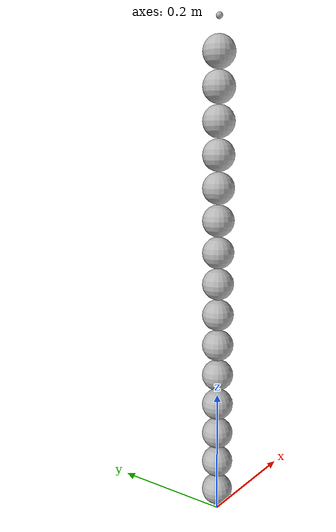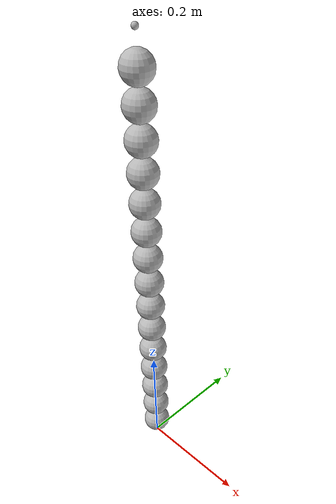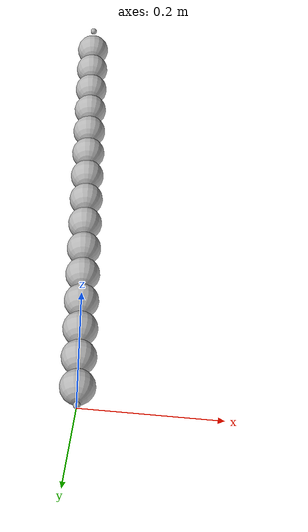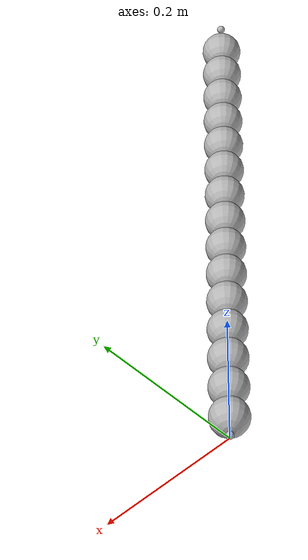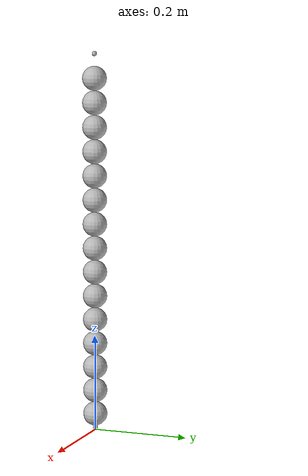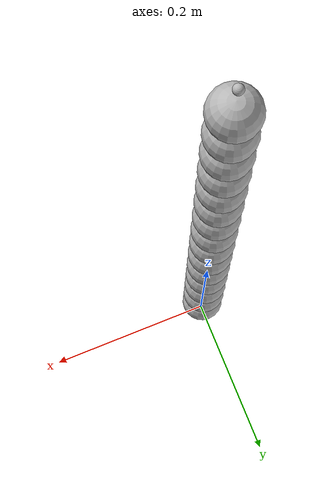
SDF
<?xml version='1.0'?>
<sdf version='1.5'>
  <model name='Rope'>
    <link name='ball0_link'>
      <pose>0 0 0.005 0 0 0</pose>
      <inertial>
        <mass>0.001</mass>
        <inertia>
          <ixx>0.0001</ixx>
          <ixy>0</ixy>
          <ixz>0</ixz>
          <iyy>0.0001</iyy>
          <iyz>0</iyz>
          <izz>0.0001</izz>
        </inertia>
      </inertial>
      <self_collide>0</self_collide>
      <enable_wind>0</enable_wind>
      <kinematic>0</kinematic>

      <visual name='ball0_visual'>
        <geometry>
          <sphere>
            <radius>0.005</radius>
          </sphere>
        </geometry>
        <material>
          <shader type='pixel'/>
        </material>
        <transparency>0</transparency>
        <cast_shadows>1</cast_shadows>
      </visual>
      <collision name='ball0_collision'>
        <laser_retro>0</laser_retro>
        <max_contacts>10</max_contacts>
        <geometry>
          <sphere>
            <radius>0.005</radius>
          </sphere>
        </geometry>
        <surface>
          <friction>
            <ode>
              <mu>0.01</mu>
              <mu2>0.01</mu2>
              <fdir1>0 0 0</fdir1>
              <slip1>0</slip1>
              <slip2>0</slip2>
            </ode>
            <torsional>
              <coefficient>1</coefficient>
              <patch_radius>0</patch_radius>
              <surface_radius>0</surface_radius>
              <use_patch_radius>1</use_patch_radius>
              <ode>
                <slip>0</slip>
              </ode>
            </torsional>
          </friction>
          <bounce>
            <restitution_coefficient>0.1</restitution_coefficient>
            <threshold>1e+06</threshold>
          </bounce>
          <contact>
            <collide_without_contact>0</collide_without_contact>
            <collide_without_contact_bitmask>1</collide_without_contact_bitmask>
            <collide_bitmask>1</collide_bitmask>
            <ode>
              <soft_cfm>0</soft_cfm>
              <soft_erp>0.2</soft_erp>
              <kp>1e+13</kp>
              <kd>1</kd>
              <max_vel>0.01</max_vel>
              <min_depth>0</min_depth>
            </ode>
            <bullet>
              <split_impulse>1</split_impulse>
              <split_impulse_penetration_threshold>-0.01</split_impulse_penetration_threshold>
              <soft_cfm>0</soft_cfm>
              <soft_erp>0.2</soft_erp>
              <kp>1e+13</kp>
              <kd>1</kd>
            </bullet>
          </contact>
        </surface>
      </collision>
    </link>

    <link name='ball1_link'>
      <pose>0 0 0.035 0 -0 0</pose>
      <inertial>
        <mass>0.001</mass>
        <inertia>
          <ixx>0.0001</ixx>
          <ixy>0</ixy>
          <ixz>0</ixz>
          <iyy>0.0001</iyy>
          <iyz>0</iyz>
          <izz>0.0001</izz>
        </inertia>
      </inertial>
      <self_collide>0</self_collide>
      <enable_wind>0</enable_wind>
      <kinematic>0</kinematic>
      <visual name='ball1_visual'>
        <geometry>
          <sphere>
            <radius>0.025</radius>
          </sphere>
        </geometry>
        <material>
          <shader type='pixel'/>
        </material>
        <pose frame=''>0 -0 0 0 -0 0</pose>
        <transparency>0</transparency>
        <cast_shadows>1</cast_shadows>
      </visual>
      <collision name='ball1_collision'>
        <laser_retro>0</laser_retro>
        <max_contacts>10</max_contacts>
        <pose frame=''>0 0 0 0 0 0</pose>
        <geometry>
          <sphere>
            <radius>0.025</radius>
          </sphere>
        </geometry>
        <surface>
          <friction>
            <ode>
              <mu>0.01</mu>
              <mu2>0.01</mu2>
              <fdir1>0 0 0</fdir1>
              <slip1>0</slip1>
              <slip2>0</slip2>
            </ode>
            <torsional>
              <coefficient>1</coefficient>
              <patch_radius>0</patch_radius>
              <surface_radius>0</surface_radius>
              <use_patch_radius>1</use_patch_radius>
              <ode>
                <slip>0</slip>
              </ode>
            </torsional>
          </friction>
          <bounce>
            <restitution_coefficient>0.1</restitution_coefficient>
            <threshold>1e+06</threshold>
          </bounce>
          <contact>
            <collide_without_contact>0</collide_without_contact>
            <collide_without_contact_bitmask>1</collide_without_contact_bitmask>
            <collide_bitmask>1</collide_bitmask>
            <ode>
              <soft_cfm>0</soft_cfm>
              <soft_erp>0.2</soft_erp>
              <kp>1e+13</kp>
              <kd>1</kd>
              <max_vel>0.01</max_vel>
              <min_depth>0</min_depth>
            </ode>
            <bullet>
              <split_impulse>1</split_impulse>
              <split_impulse_penetration_threshold>-0.01</split_impulse_penetration_threshold>
              <soft_cfm>0</soft_cfm>
              <soft_erp>0.2</soft_erp>
              <kp>1e+13</kp>
              <kd>1</kd>
            </bullet>
          </contact>
        </surface>
      </collision>
    </link>

    <link name='ball2_link'>
      <pose>0 0 0.085 0 -0 0</pose>
      <inertial>
        <mass>0.001</mass>
        <inertia>
          <ixx>0.0001</ixx>
          <ixy>0</ixy>
          <ixz>0</ixz>
          <iyy>0.0001</iyy>
          <iyz>0</iyz>
          <izz>0.0001</izz>
        </inertia>
      </inertial>
      <self_collide>0</self_collide>
      <enable_wind>0</enable_wind>
      <kinematic>0</kinematic>
      <visual name='ball2_visual'>
        <geometry>
          <sphere>
            <radius>0.025</radius>
          </sphere>
        </geometry>
        <material>
          <shader type='pixel'/>
        </material>
        <pose frame=''>0 -0 0 0 -0 0</pose>
        <transparency>0</transparency>
        <cast_shadows>1</cast_shadows>
      </visual>
      <collision name='ball2_collision'>
        <laser_retro>0</laser_retro>
        <max_contacts>10</max_contacts>
        <pose frame=''>0 0 0 0 0 0</pose>
        <geometry>
          <sphere>
            <radius>0.025</radius>
          </sphere>
        </geometry>
        <surface>
          <friction>
            <ode>
              <mu>0.01</mu>
              <mu2>0.01</mu2>
              <fdir1>0 0 0</fdir1>
              <slip1>0</slip1>
              <slip2>0</slip2>
            </ode>
            <torsional>
              <coefficient>1</coefficient>
              <patch_radius>0</patch_radius>
              <surface_radius>0</surface_radius>
              <use_patch_radius>1</use_patch_radius>
              <ode>
                <slip>0</slip>
              </ode>
            </torsional>
          </friction>
          <bounce>
            <restitution_coefficient>0.1</restitution_coefficient>
            <threshold>1e+06</threshold>
          </bounce>
          <contact>
            <collide_without_contact>0</collide_without_contact>
            <collide_without_contact_bitmask>1</collide_without_contact_bitmask>
            <collide_bitmask>1</collide_bitmask>
            <ode>
              <soft_cfm>0</soft_cfm>
              <soft_erp>0.2</soft_erp>
              <kp>1e+13</kp>
              <kd>1</kd>
              <max_vel>0.01</max_vel>
              <min_depth>0</min_depth>
            </ode>
            <bullet>
              <split_impulse>1</split_impulse>
              <split_impulse_penetration_threshold>-0.01</split_impulse_penetration_threshold>
              <soft_cfm>0</soft_cfm>
              <soft_erp>0.2</soft_erp>
              <kp>1e+13</kp>
              <kd>1</kd>
            </bullet>
          </contact>
        </surface>
      </collision>
    </link>

    <link name='ball3_link'>
      <pose>0 0 0.135 0 -0 0</pose>
      <inertial>
        <mass>0.001</mass>
        <inertia>
          <ixx>0.0001</ixx>
          <ixy>0</ixy>
          <ixz>0</ixz>
          <iyy>0.0001</iyy>
          <iyz>0</iyz>
          <izz>0.0001</izz>
        </inertia>
      </inertial>
      <self_collide>0</self_collide>
      <enable_wind>0</enable_wind>
      <kinematic>0</kinematic>
      <visual name='ball3_visual'>
        <geometry>
          <sphere>
            <radius>0.025</radius>
          </sphere>
        </geometry>
        <material>
          <shader type='pixel'/>
        </material>
        <pose frame=''>0 -0 0 0 -0 0</pose>
        <transparency>0</transparency>
        <cast_shadows>1</cast_shadows>
      </visual>
      <collision name='ball3_collision'>
        <laser_retro>0</laser_retro>
        <max_contacts>10</max_contacts>
        <pose frame=''>0 0 0 0 0 0</pose>
        <geometry>
          <sphere>
            <radius>0.025</radius>
          </sphere>
        </geometry>
        <surface>
          <friction>
            <ode>
              <mu>0.01</mu>
              <mu2>0.01</mu2>
              <fdir1>0 0 0</fdir1>
              <slip1>0</slip1>
              <slip2>0</slip2>
            </ode>
            <torsional>
              <coefficient>1</coefficient>
              <patch_radius>0</patch_radius>
              <surface_radius>0</surface_radius>
              <use_patch_radius>1</use_patch_radius>
              <ode>
                <slip>0</slip>
              </ode>
            </torsional>
          </friction>
          <bounce>
            <restitution_coefficient>0.1</restitution_coefficient>
            <threshold>1e+06</threshold>
          </bounce>
          <contact>
            <collide_without_contact>0</collide_without_contact>
            <collide_without_contact_bitmask>1</collide_without_contact_bitmask>
            <collide_bitmask>1</collide_bitmask>
            <ode>
              <soft_cfm>0</soft_cfm>
              <soft_erp>0.2</soft_erp>
              <kp>1e+13</kp>
              <kd>1</kd>
              <max_vel>0.01</max_vel>
              <min_depth>0</min_depth>
            </ode>
            <bullet>
              <split_impulse>1</split_impulse>
              <split_impulse_penetration_threshold>-0.01</split_impulse_penetration_threshold>
              <soft_cfm>0</soft_cfm>
              <soft_erp>0.2</soft_erp>
              <kp>1e+13</kp>
              <kd>1</kd>
            </bullet>
          </contact>
        </surface>
      </collision>
    </link>

<link name='ball4_link'>
      <pose>0 0 0.185 0 -0 0</pose>
      <inertial>
        <mass>0.001</mass>
        <inertia>
          <ixx>0.0001</ixx>
          <ixy>0</ixy>
          <ixz>0</ixz>
          <iyy>0.0001</iyy>
          <iyz>0</iyz>
          <izz>0.0001</izz>
        </inertia>
      </inertial>
      <self_collide>0</self_collide>
      <enable_wind>0</enable_wind>
      <kinematic>0</kinematic>

      <visual name='ball4_visual'>
        <geometry>
          <sphere>
            <radius>0.025</radius>
          </sphere>
        </geometry>
        <material>
          <shader type='pixel'/>
        </material>
        <pose>0 0 0 0 -0 0</pose>
        <transparency>0</transparency>
        <cast_shadows>1</cast_shadows>
      </visual>
      <collision name='ball4_collision'>
        <laser_retro>0</laser_retro>
        <max_contacts>10</max_contacts>
        <pose>0 0 0 0 0 0</pose>
        <geometry>
          <sphere>
            <radius>0.025</radius>
          </sphere>
        </geometry>
        <surface>
          <friction>
            <ode>
              <mu>0.01</mu>
              <mu2>0.01</mu2>
              <fdir1>0 0 0</fdir1>
              <slip1>0</slip1>
              <slip2>0</slip2>
            </ode>
            <torsional>
              <coefficient>1</coefficient>
              <patch_radius>0</patch_radius>
              <surface_radius>0</surface_radius>
              <use_patch_radius>1</use_patch_radius>
              <ode>
                <slip>0</slip>
              </ode>
            </torsional>
          </friction>
          <bounce>
            <restitution_coefficient>0.1</restitution_coefficient>
            <threshold>1e+06</threshold>
          </bounce>
          <contact>
            <collide_without_contact>0</collide_without_contact>
            <collide_without_contact_bitmask>1</collide_without_contact_bitmask>
            <collide_bitmask>1</collide_bitmask>
            <ode>
              <soft_cfm>0</soft_cfm>
              <soft_erp>0.2</soft_erp>
              <kp>1e+13</kp>
              <kd>1</kd>
              <max_vel>0.01</max_vel>
              <min_depth>0</min_depth>
            </ode>
            <bullet>
              <split_impulse>1</split_impulse>
              <split_impulse_penetration_threshold>-0.01</split_impulse_penetration_threshold>
              <soft_cfm>0</soft_cfm>
              <soft_erp>0.2</soft_erp>
              <kp>1e+13</kp>
              <kd>1</kd>
            </bullet>
          </contact>
        </surface>
      </collision>
    </link>

<link name='ball5_link'>
  <pose>0 0 0.235 0 -0 0</pose>
      <inertial>
        <mass>0.001</mass>
        <inertia>
          <ixx>0.0001</ixx>
          <ixy>0</ixy>
          <ixz>0</ixz>
          <iyy>0.0001</iyy>
          <iyz>0</iyz>
          <izz>0.0001</izz>
        </inertia>
      </inertial>
      <self_collide>0</self_collide>
      <enable_wind>0</enable_wind>
      <kinematic>0</kinematic>

      <visual name='ball5_visual'>
        <geometry>
          <sphere>
            <radius>0.025</radius>
          </sphere>
        </geometry>
        <material>
          <shader type='pixel'/>
        </material>
        <pose>0 0 0 0 -0 0</pose>
        <transparency>0</transparency>
        <cast_shadows>1</cast_shadows>
      </visual>
      <collision name='ball5_collision'>
        <laser_retro>0</laser_retro>
        <max_contacts>10</max_contacts>
        <pose>0 0 0 0 0 0</pose>
        <geometry>
          <sphere>
            <radius>0.025</radius>
          </sphere>
        </geometry>
        <surface>
          <friction>
            <ode>
              <mu>0.01</mu>
              <mu2>0.01</mu2>
              <fdir1>0 0 0</fdir1>
              <slip1>0</slip1>
              <slip2>0</slip2>
            </ode>
            <torsional>
              <coefficient>1</coefficient>
              <patch_radius>0</patch_radius>
              <surface_radius>0</surface_radius>
              <use_patch_radius>1</use_patch_radius>
              <ode>
                <slip>0</slip>
              </ode>
            </torsional>
          </friction>
          <bounce>
            <restitution_coefficient>0.1</restitution_coefficient>
            <threshold>1e+06</threshold>
          </bounce>
          <contact>
            <collide_without_contact>0</collide_without_contact>
            <collide_without_contact_bitmask>1</collide_without_contact_bitmask>
            <collide_bitmask>1</collide_bitmask>
            <ode>
              <soft_cfm>0</soft_cfm>
              <soft_erp>0.2</soft_erp>
              <kp>1e+13</kp>
              <kd>1</kd>
              <max_vel>0.01</max_vel>
              <min_depth>0</min_depth>
            </ode>
            <bullet>
              <split_impulse>1</split_impulse>
              <split_impulse_penetration_threshold>-0.01</split_impulse_penetration_threshold>
              <soft_cfm>0</soft_cfm>
              <soft_erp>0.2</soft_erp>
              <kp>1e+13</kp>
              <kd>1</kd>
            </bullet>
          </contact>
        </surface>
      </collision>
    </link>

<link name='ball6_link'>
  <pose>0 0 0.285 0 -0 0</pose>
      <inertial>
        <mass>0.001</mass>
        <inertia>
          <ixx>0.0001</ixx>
          <ixy>0</ixy>
          <ixz>0</ixz>
          <iyy>0.0001</iyy>
          <iyz>0</iyz>
          <izz>0.0001</izz>
        </inertia>
      </inertial>
      <self_collide>0</self_collide>
      <enable_wind>0</enable_wind>
      <kinematic>0</kinematic>

      <visual name='ball6_visual'>
        <geometry>
          <sphere>
            <radius>0.025</radius>
          </sphere>
        </geometry>
        <material>
          <shader type='pixel'/>
        </material>
        <pose>0 0 0 0 -0 0</pose>
        <transparency>0</transparency>
        <cast_shadows>1</cast_shadows>
      </visual>
      <collision name='ball6_collision'>
        <laser_retro>0</laser_retro>
        <max_contacts>10</max_contacts>
        <pose>0 0 0 0 0 0</pose>
        <geometry>
          <sphere>
            <radius>0.025</radius>
          </sphere>
        </geometry>
        <surface>
          <friction>
            <ode>
              <mu>0.01</mu>
              <mu2>0.01</mu2>
              <fdir1>0 0 0</fdir1>
              <slip1>0</slip1>
              <slip2>0</slip2>
            </ode>
            <torsional>
              <coefficient>1</coefficient>
              <patch_radius>0</patch_radius>
              <surface_radius>0</surface_radius>
              <use_patch_radius>1</use_patch_radius>
              <ode>
                <slip>0</slip>
              </ode>
            </torsional>
          </friction>
          <bounce>
            <restitution_coefficient>0.1</restitution_coefficient>
            <threshold>1e+06</threshold>
          </bounce>
          <contact>
            <collide_without_contact>0</collide_without_contact>
            <collide_without_contact_bitmask>1</collide_without_contact_bitmask>
            <collide_bitmask>1</collide_bitmask>
            <ode>
              <soft_cfm>0</soft_cfm>
              <soft_erp>0.2</soft_erp>
              <kp>1e+13</kp>
              <kd>1</kd>
              <max_vel>0.01</max_vel>
              <min_depth>0</min_depth>
            </ode>
            <bullet>
              <split_impulse>1</split_impulse>
              <split_impulse_penetration_threshold>-0.01</split_impulse_penetration_threshold>
              <soft_cfm>0</soft_cfm>
              <soft_erp>0.2</soft_erp>
              <kp>1e+13</kp>
              <kd>1</kd>
            </bullet>
          </contact>
        </surface>
      </collision>
    </link>

<link name='ball7_link'>
  <pose>0 0 0.335 0 -0 0</pose>
      <inertial>
        <mass>0.001</mass>
        <inertia>
          <ixx>0.0001</ixx>
          <ixy>0</ixy>
          <ixz>0</ixz>
          <iyy>0.0001</iyy>
          <iyz>0</iyz>
          <izz>0.0001</izz>
        </inertia>
      </inertial>
      <self_collide>0</self_collide>
      <enable_wind>0</enable_wind>
      <kinematic>0</kinematic>

      <visual name='ball7_visual'>
        <geometry>
          <sphere>
            <radius>0.025</radius>
          </sphere>
        </geometry>
        <material>
          <shader type='pixel'/>
        </material>
        <pose>0 0 0 0 -0 0</pose>
        <transparency>0</transparency>
        <cast_shadows>1</cast_shadows>
      </visual>
      <collision name='ball7_collision'>
        <laser_retro>0</laser_retro>
        <max_contacts>10</max_contacts>
        <pose>0 0 0 0 0 0</pose>
        <geometry>
          <sphere>
            <radius>0.025</radius>
          </sphere>
        </geometry>
        <surface>
          <friction>
            <ode>
              <mu>0.01</mu>
              <mu2>0.01</mu2>
              <fdir1>0 0 0</fdir1>
              <slip1>0</slip1>
              <slip2>0</slip2>
            </ode>
            <torsional>
              <coefficient>1</coefficient>
              <patch_radius>0</patch_radius>
              <surface_radius>0</surface_radius>
              <use_patch_radius>1</use_patch_radius>
              <ode>
                <slip>0</slip>
              </ode>
            </torsional>
          </friction>
          <bounce>
            <restitution_coefficient>0.1</restitution_coefficient>
            <threshold>1e+06</threshold>
          </bounce>
          <contact>
            <collide_without_contact>0</collide_without_contact>
            <collide_without_contact_bitmask>1</collide_without_contact_bitmask>
            <collide_bitmask>1</collide_bitmask>
            <ode>
              <soft_cfm>0</soft_cfm>
              <soft_erp>0.2</soft_erp>
              <kp>1e+13</kp>
              <kd>1</kd>
              <max_vel>0.01</max_vel>
              <min_depth>0</min_depth>
            </ode>
            <bullet>
              <split_impulse>1</split_impulse>
              <split_impulse_penetration_threshold>-0.01</split_impulse_penetration_threshold>
              <soft_cfm>0</soft_cfm>
              <soft_erp>0.2</soft_erp>
              <kp>1e+13</kp>
              <kd>1</kd>
            </bullet>
          </contact>
        </surface>
      </collision>
    </link>

<link name='ball8_link'>
  <pose>0 0 0.385 0 -0 0</pose>
      <inertial>
        <mass>0.001</mass>
        <inertia>
          <ixx>0.0001</ixx>
          <ixy>0</ixy>
          <ixz>0</ixz>
          <iyy>0.0001</iyy>
          <iyz>0</iyz>
          <izz>0.0001</izz>
        </inertia>
      </inertial>
      <self_collide>0</self_collide>
      <enable_wind>0</enable_wind>
      <kinematic>0</kinematic>

      <visual name='ball8_visual'>
        <geometry>
          <sphere>
            <radius>0.025</radius>
          </sphere>
        </geometry>
        <material>
          <shader type='pixel'/>
        </material>
        <pose>0 0 0 0 -0 0</pose>
        <transparency>0</transparency>
        <cast_shadows>1</cast_shadows>
      </visual>
      <collision name='ball8_collision'>
        <laser_retro>0</laser_retro>
        <max_contacts>10</max_contacts>
        <pose>0 0 0 0 0 0</pose>
        <geometry>
          <sphere>
            <radius>0.025</radius>
          </sphere>
        </geometry>
        <surface>
          <friction>
            <ode>
              <mu>0.01</mu>
              <mu2>0.01</mu2>
              <fdir1>0 0 0</fdir1>
              <slip1>0</slip1>
              <slip2>0</slip2>
            </ode>
            <torsional>
              <coefficient>1</coefficient>
              <patch_radius>0</patch_radius>
              <surface_radius>0</surface_radius>
              <use_patch_radius>1</use_patch_radius>
              <ode>
                <slip>0</slip>
              </ode>
            </torsional>
          </friction>
          <bounce>
            <restitution_coefficient>0.1</restitution_coefficient>
            <threshold>1e+06</threshold>
          </bounce>
          <contact>
            <collide_without_contact>0</collide_without_contact>
            <collide_without_contact_bitmask>1</collide_without_contact_bitmask>
            <collide_bitmask>1</collide_bitmask>
            <ode>
              <soft_cfm>0</soft_cfm>
              <soft_erp>0.2</soft_erp>
              <kp>1e+13</kp>
              <kd>1</kd>
              <max_vel>0.01</max_vel>
              <min_depth>0</min_depth>
            </ode>
            <bullet>
              <split_impulse>1</split_impulse>
              <split_impulse_penetration_threshold>-0.01</split_impulse_penetration_threshold>
              <soft_cfm>0</soft_cfm>
              <soft_erp>0.2</soft_erp>
              <kp>1e+13</kp>
              <kd>1</kd>
            </bullet>
          </contact>
        </surface>
      </collision>
    </link>

    <link name='ball9_link'>
      <pose>0 0 0.435 0 -0 0</pose>
      <inertial>
        <mass>0.001</mass>
        <inertia>
          <ixx>0.0001</ixx>
          <ixy>0</ixy>
          <ixz>0</ixz>
          <iyy>0.0001</iyy>
          <iyz>0</iyz>
          <izz>0.0001</izz>
        </inertia>
      </inertial>
      <self_collide>0</self_collide>
      <enable_wind>0</enable_wind>
      <kinematic>0</kinematic>

      <visual name='ball9_visual'>
        <geometry>
          <sphere>
            <radius>0.025</radius>
          </sphere>
        </geometry>
        <material>
          <shader type='pixel'/>
        </material>
        <pose>0 0 0 0 -0 0</pose>
        <transparency>0</transparency>
        <cast_shadows>1</cast_shadows>
      </visual>
      <collision name='ball9_collision'>
        <laser_retro>0</laser_retro>
        <max_contacts>10</max_contacts>
        <pose>0 0 0 0 0 0</pose>
        <geometry>
          <sphere>
            <radius>0.025</radius>
          </sphere>
        </geometry>
        <surface>
          <friction>
            <ode>
              <mu>0.01</mu>
              <mu2>0.01</mu2>
              <fdir1>0 0 0</fdir1>
              <slip1>0</slip1>
              <slip2>0</slip2>
            </ode>
            <torsional>
              <coefficient>1</coefficient>
              <patch_radius>0</patch_radius>
              <surface_radius>0</surface_radius>
              <use_patch_radius>1</use_patch_radius>
              <ode>
                <slip>0</slip>
              </ode>
            </torsional>
          </friction>
          <bounce>
            <restitution_coefficient>0.1</restitution_coefficient>
            <threshold>1e+06</threshold>
          </bounce>
          <contact>
            <collide_without_contact>0</collide_without_contact>
            <collide_without_contact_bitmask>1</collide_without_contact_bitmask>
            <collide_bitmask>1</collide_bitmask>
            <ode>
              <soft_cfm>0</soft_cfm>
              <soft_erp>0.2</soft_erp>
              <kp>1e+13</kp>
              <kd>1</kd>
              <max_vel>0.01</max_vel>
              <min_depth>0</min_depth>
            </ode>
            <bullet>
              <split_impulse>1</split_impulse>
              <split_impulse_penetration_threshold>-0.01</split_impulse_penetration_threshold>
              <soft_cfm>0</soft_cfm>
              <soft_erp>0.2</soft_erp>
              <kp>1e+13</kp>
              <kd>1</kd>
            </bullet>
          </contact>
        </surface>
      </collision>
    </link>

    <link name='ball10_link'>
      <pose>0 0 0.485 0 -0 0</pose>
      <inertial>
        <mass>0.001</mass>
        <inertia>
          <ixx>0.0001</ixx>
          <ixy>0</ixy>
          <ixz>0</ixz>
          <iyy>0.0001</iyy>
          <iyz>0</iyz>
          <izz>0.0001</izz>
        </inertia>
      </inertial>
      <self_collide>0</self_collide>
      <enable_wind>0</enable_wind>
      <kinematic>0</kinematic>

      <visual name='ball10_visual'>
        <geometry>
          <sphere>
            <radius>0.025</radius>
          </sphere>
        </geometry>
        <material>
          <shader type='pixel'/>
        </material>
        <pose>0 0 0 0 -0 0</pose>
        <transparency>0</transparency>
        <cast_shadows>1</cast_shadows>
      </visual>
      <collision name='ball10_collision'>
        <laser_retro>0</laser_retro>
        <max_contacts>10</max_contacts>
        <pose>0 0 0 0 0 0</pose>
        <geometry>
          <sphere>
            <radius>0.025</radius>
          </sphere>
        </geometry>
        <surface>
          <friction>
            <ode>
              <mu>0.01</mu>
              <mu2>0.01</mu2>
              <fdir1>0 0 0</fdir1>
              <slip1>0</slip1>
              <slip2>0</slip2>
            </ode>
            <torsional>
              <coefficient>1</coefficient>
              <patch_radius>0</patch_radius>
              <surface_radius>0</surface_radius>
              <use_patch_radius>1</use_patch_radius>
              <ode>
                <slip>0</slip>
              </ode>
            </torsional>
          </friction>
          <bounce>
            <restitution_coefficient>0.1</restitution_coefficient>
            <threshold>1e+06</threshold>
          </bounce>
          <contact>
            <collide_without_contact>0</collide_without_contact>
            <collide_without_contact_bitmask>1</collide_without_contact_bitmask>
            <collide_bitmask>1</collide_bitmask>
            <ode>
              <soft_cfm>0</soft_cfm>
              <soft_erp>0.2</soft_erp>
              <kp>1e+13</kp>
              <kd>1</kd>
              <max_vel>0.01</max_vel>
              <min_depth>0</min_depth>
            </ode>
            <bullet>
              <split_impulse>1</split_impulse>
              <split_impulse_penetration_threshold>-0.01</split_impulse_penetration_threshold>
              <soft_cfm>0</soft_cfm>
              <soft_erp>0.2</soft_erp>
              <kp>1e+13</kp>
              <kd>1</kd>
            </bullet>
          </contact>
        </surface>
      </collision>
    </link>

    <link name='ball11_link'>
      <pose>0 0 0.535 0 -0 0</pose>
      <inertial>
        <mass>0.001</mass>
        <inertia>
          <ixx>0.0001</ixx>
          <ixy>0</ixy>
          <ixz>0</ixz>
          <iyy>0.0001</iyy>
          <iyz>0</iyz>
          <izz>0.0001</izz>
        </inertia>
      </inertial>
      <self_collide>0</self_collide>
      <enable_wind>0</enable_wind>
      <kinematic>0</kinematic>

      <visual name='ball11_visual'>
        <geometry>
          <sphere>
            <radius>0.025</radius>
          </sphere>
        </geometry>
        <material>
          <shader type='pixel'/>
        </material>
        <pose>0 0 0 0 -0 0</pose>
        <transparency>0</transparency>
        <cast_shadows>1</cast_shadows>
      </visual>
      <collision name='ball11_collision'>
        <laser_retro>0</laser_retro>
        <max_contacts>10</max_contacts>
        <pose>0 0 0 0 0 0</pose>
        <geometry>
          <sphere>
            <radius>0.025</radius>
          </sphere>
        </geometry>
        <surface>
          <friction>
            <ode>
              <mu>0.01</mu>
              <mu2>0.01</mu2>
              <fdir1>0 0 0</fdir1>
              <slip1>0</slip1>
              <slip2>0</slip2>
            </ode>
            <torsional>
              <coefficient>1</coefficient>
              <patch_radius>0</patch_radius>
              <surface_radius>0</surface_radius>
              <use_patch_radius>1</use_patch_radius>
              <ode>
                <slip>0</slip>
              </ode>
            </torsional>
          </friction>
          <bounce>
            <restitution_coefficient>0.1</restitution_coefficient>
            <threshold>1e+06</threshold>
          </bounce>
          <contact>
            <collide_without_contact>0</collide_without_contact>
            <collide_without_contact_bitmask>1</collide_without_contact_bitmask>
            <collide_bitmask>1</collide_bitmask>
            <ode>
              <soft_cfm>0</soft_cfm>
              <soft_erp>0.2</soft_erp>
              <kp>1e+13</kp>
              <kd>1</kd>
              <max_vel>0.01</max_vel>
              <min_depth>0</min_depth>
            </ode>
            <bullet>
              <split_impulse>1</split_impulse>
              <split_impulse_penetration_threshold>-0.01</split_impulse_penetration_threshold>
              <soft_cfm>0</soft_cfm>
              <soft_erp>0.2</soft_erp>
              <kp>1e+13</kp>
              <kd>1</kd>
            </bullet>
          </contact>
        </surface>
      </collision>
    </link>

    <link name='ball12_link'>
      <pose>0 0 0.585 0 -0 0</pose>
      <inertial>
        <mass>0.001</mass>
        <inertia>
          <ixx>0.0001</ixx>
          <ixy>0</ixy>
          <ixz>0</ixz>
          <iyy>0.0001</iyy>
          <iyz>0</iyz>
          <izz>0.0001</izz>
        </inertia>
      </inertial>
      <self_collide>0</self_collide>
      <enable_wind>0</enable_wind>
      <kinematic>0</kinematic>

      <visual name='ball12_visual'>
        <geometry>
          <sphere>
            <radius>0.025</radius>
          </sphere>
        </geometry>
        <material>
          <shader type='pixel'/>
        </material>
        <pose>0 0 0 0 -0 0</pose>
        <transparency>0</transparency>
        <cast_shadows>1</cast_shadows>
      </visual>
      <collision name='ball12_collision'>
        <laser_retro>0</laser_retro>
        <max_contacts>10</max_contacts>
        <pose>0 0 0 0 0 0</pose>
        <geometry>
          <sphere>
            <radius>0.025</radius>
          </sphere>
        </geometry>
        <surface>
          <friction>
            <ode>
              <mu>0.01</mu>
              <mu2>0.01</mu2>
              <fdir1>0 0 0</fdir1>
              <slip1>0</slip1>
              <slip2>0</slip2>
            </ode>
            <torsional>
              <coefficient>1</coefficient>
              <patch_radius>0</patch_radius>
              <surface_radius>0</surface_radius>
              <use_patch_radius>1</use_patch_radius>
              <ode>
                <slip>0</slip>
              </ode>
            </torsional>
          </friction>
          <bounce>
            <restitution_coefficient>0.1</restitution_coefficient>
            <threshold>1e+06</threshold>
          </bounce>
          <contact>
            <collide_without_contact>0</collide_without_contact>
            <collide_without_contact_bitmask>1</collide_without_contact_bitmask>
            <collide_bitmask>1</collide_bitmask>
            <ode>
              <soft_cfm>0</soft_cfm>
              <soft_erp>0.2</soft_erp>
              <kp>1e+13</kp>
              <kd>1</kd>
              <max_vel>0.01</max_vel>
              <min_depth>0</min_depth>
            </ode>
            <bullet>
              <split_impulse>1</split_impulse>
              <split_impulse_penetration_threshold>-0.01</split_impulse_penetration_threshold>
              <soft_cfm>0</soft_cfm>
              <soft_erp>0.2</soft_erp>
              <kp>1e+13</kp>
              <kd>1</kd>
            </bullet>
          </contact>
        </surface>
      </collision>
    </link>

    <link name='ball13_link'>
      <pose>0 0 0.635 0 -0 0</pose>
      <inertial>
        <mass>0.001</mass>
        <inertia>
          <ixx>0.0001</ixx>
          <ixy>0</ixy>
          <ixz>0</ixz>
          <iyy>0.0001</iyy>
          <iyz>0</iyz>
          <izz>0.0001</izz>
        </inertia>
      </inertial>
      <self_collide>0</self_collide>
      <enable_wind>0</enable_wind>
      <kinematic>0</kinematic>

      <visual name='ball13_visual'>
        <geometry>
          <sphere>
            <radius>0.025</radius>
          </sphere>
        </geometry>
        <material>
          <shader type='pixel'/>
        </material>
        <pose>0 0 0 0 -0 0</pose>
        <transparency>0</transparency>
        <cast_shadows>1</cast_shadows>
      </visual>
      <collision name='ball13_collision'>
        <laser_retro>0</laser_retro>
        <max_contacts>10</max_contacts>
        <pose>0 0 0 0 0 0</pose>
        <geometry>
          <sphere>
            <radius>0.025</radius>
          </sphere>
        </geometry>
        <surface>
          <friction>
            <ode>
              <mu>0.01</mu>
              <mu2>0.01</mu2>
              <fdir1>0 0 0</fdir1>
              <slip1>0</slip1>
              <slip2>0</slip2>
            </ode>
            <torsional>
              <coefficient>1</coefficient>
              <patch_radius>0</patch_radius>
              <surface_radius>0</surface_radius>
              <use_patch_radius>1</use_patch_radius>
              <ode>
                <slip>0</slip>
              </ode>
            </torsional>
          </friction>
          <bounce>
            <restitution_coefficient>0.1</restitution_coefficient>
            <threshold>1e+06</threshold>
          </bounce>
          <contact>
            <collide_without_contact>0</collide_without_contact>
            <collide_without_contact_bitmask>1</collide_without_contact_bitmask>
            <collide_bitmask>1</collide_bitmask>
            <ode>
              <soft_cfm>0</soft_cfm>
              <soft_erp>0.2</soft_erp>
              <kp>1e+13</kp>
              <kd>1</kd>
              <max_vel>0.01</max_vel>
              <min_depth>0</min_depth>
            </ode>
            <bullet>
              <split_impulse>1</split_impulse>
              <split_impulse_penetration_threshold>-0.01</split_impulse_penetration_threshold>
              <soft_cfm>0</soft_cfm>
              <soft_erp>0.2</soft_erp>
              <kp>1e+13</kp>
              <kd>1</kd>
            </bullet>
          </contact>
        </surface>
      </collision>
    </link>

    <link name='ball14_link'>
      <pose>0 0 0.685 0 -0 0</pose>
      <inertial>
        <mass>0.001</mass>
        <inertia>
          <ixx>0.0001</ixx>
          <ixy>0</ixy>
          <ixz>0</ixz>
          <iyy>0.0001</iyy>
          <iyz>0</iyz>
          <izz>0.0001</izz>
        </inertia>
      </inertial>
      <self_collide>0</self_collide>
      <enable_wind>0</enable_wind>
      <kinematic>0</kinematic>

      <visual name='ball14_visual'>
        <geometry>
          <sphere>
            <radius>0.025</radius>
          </sphere>
        </geometry>
        <material>
          <shader type='pixel'/>
        </material>
        <pose>0 0 0 0 -0 0</pose>
        <transparency>0</transparency>
        <cast_shadows>1</cast_shadows>
      </visual>
      <collision name='ball14_collision'>
        <laser_retro>0</laser_retro>
        <max_contacts>10</max_contacts>
        <pose>0 0 0 0 0 0</pose>
        <geometry>
          <sphere>
            <radius>0.025</radius>
          </sphere>
        </geometry>
        <surface>
          <friction>
            <ode>
              <mu>0.01</mu>
              <mu2>0.01</mu2>
              <fdir1>0 0 0</fdir1>
              <slip1>0</slip1>
              <slip2>0</slip2>
            </ode>
            <torsional>
              <coefficient>1</coefficient>
              <patch_radius>0</patch_radius>
              <surface_radius>0</surface_radius>
              <use_patch_radius>1</use_patch_radius>
              <ode>
                <slip>0</slip>
              </ode>
            </torsional>
          </friction>
          <bounce>
            <restitution_coefficient>0.1</restitution_coefficient>
            <threshold>1e+06</threshold>
          </bounce>
          <contact>
            <collide_without_contact>0</collide_without_contact>
            <collide_without_contact_bitmask>1</collide_without_contact_bitmask>
            <collide_bitmask>1</collide_bitmask>
            <ode>
              <soft_cfm>0</soft_cfm>
              <soft_erp>0.2</soft_erp>
              <kp>1e+13</kp>
              <kd>1</kd>
              <max_vel>0.01</max_vel>
              <min_depth>0</min_depth>
            </ode>
            <bullet>
              <split_impulse>1</split_impulse>
              <split_impulse_penetration_threshold>-0.01</split_impulse_penetration_threshold>
              <soft_cfm>0</soft_cfm>
              <soft_erp>0.2</soft_erp>
              <kp>1e+13</kp>
              <kd>1</kd>
            </bullet>
          </contact>
        </surface>
      </collision>
    </link>

    <link name='ball15_link'>
      <pose>0 0 0.735 0 -0 0</pose>
      <inertial>
        <mass>0.001</mass>
        <inertia>
          <ixx>0.0001</ixx>
          <ixy>0</ixy>
          <ixz>0</ixz>
          <iyy>0.0001</iyy>
          <iyz>0</iyz>
          <izz>0.0001</izz>
        </inertia>
      </inertial>
      <self_collide>0</self_collide>
      <enable_wind>0</enable_wind>
      <kinematic>0</kinematic>

      <visual name='ball15_visual'>
        <geometry>
          <sphere>
            <radius>0.025</radius>
          </sphere>
        </geometry>
        <material>
          <shader type='pixel'/>
        </material>
        <pose>0 0 0 0 -0 0</pose>
        <transparency>0</transparency>
        <cast_shadows>1</cast_shadows>
      </visual>
      <collision name='ball15_collision'>
        <laser_retro>0</laser_retro>
        <max_contacts>10</max_contacts>
        <pose>0 0 0 0 0 0</pose>
        <geometry>
          <sphere>
            <radius>0.025</radius>
          </sphere>
        </geometry>
        <surface>
          <friction>
            <ode>
              <mu>0.01</mu>
              <mu2>0.01</mu2>
              <fdir1>0 0 0</fdir1>
              <slip1>0</slip1>
              <slip2>0</slip2>
            </ode>
            <torsional>
              <coefficient>1</coefficient>
              <patch_radius>0</patch_radius>
              <surface_radius>0</surface_radius>
              <use_patch_radius>1</use_patch_radius>
              <ode>
                <slip>0</slip>
              </ode>
            </torsional>
          </friction>
          <bounce>
            <restitution_coefficient>0.1</restitution_coefficient>
            <threshold>1e+06</threshold>
          </bounce>
          <contact>
            <collide_without_contact>0</collide_without_contact>
            <collide_without_contact_bitmask>1</collide_without_contact_bitmask>
            <collide_bitmask>1</collide_bitmask>
            <ode>
              <soft_cfm>0</soft_cfm>
              <soft_erp>0.2</soft_erp>
              <kp>1e+13</kp>
              <kd>1</kd>
              <max_vel>0.01</max_vel>
              <min_depth>0</min_depth>
            </ode>
            <bullet>
              <split_impulse>1</split_impulse>
              <split_impulse_penetration_threshold>-0.01</split_impulse_penetration_threshold>
              <soft_cfm>0</soft_cfm>
              <soft_erp>0.2</soft_erp>
              <kp>1e+13</kp>
              <kd>1</kd>
            </bullet>
          </contact>
        </surface>
      </collision>
    </link>

    <link name='rear_link'>
      <pose>0 0 0.785 0 0 0</pose>
      <inertial>
        <mass>0.001</mass>
        <inertia>
          <ixx>0.0001</ixx>
          <ixy>0</ixy>
          <ixz>0</ixz>
          <iyy>0.0001</iyy>
          <iyz>0</iyz>
          <izz>0.0001</izz>
        </inertia>
      </inertial>
      <self_collide>0</self_collide>
      <enable_wind>0</enable_wind>
      <kinematic>0</kinematic>

      <visual name='rear_visual'>
        <geometry>
          <sphere>
            <radius>0.005</radius>
          </sphere>
        </geometry>
        <material>
          <shader type='pixel'/>
        </material>
        <transparency>0</transparency>
        <cast_shadows>1</cast_shadows>
      </visual>
      <collision name='rear_collision'>
        <laser_retro>0</laser_retro>
        <max_contacts>10</max_contacts>
        <geometry>
          <sphere>
            <radius>0.005</radius>
          </sphere>
        </geometry>
        <surface>
          <friction>
            <ode>
              <mu>0.01</mu>
              <mu2>0.01</mu2>
              <fdir1>0 0 0</fdir1>
              <slip1>0</slip1>
              <slip2>0</slip2>
            </ode>
            <torsional>
              <coefficient>1</coefficient>
              <patch_radius>0</patch_radius>
              <surface_radius>0</surface_radius>
              <use_patch_radius>1</use_patch_radius>
              <ode>
                <slip>0</slip>
              </ode>
            </torsional>
          </friction>
          <bounce>
            <restitution_coefficient>0.1</restitution_coefficient>
            <threshold>1e+06</threshold>
          </bounce>
          <contact>
            <collide_without_contact>0</collide_without_contact>
            <collide_without_contact_bitmask>1</collide_without_contact_bitmask>
            <collide_bitmask>1</collide_bitmask>
            <ode>
              <soft_cfm>0</soft_cfm>
              <soft_erp>0.2</soft_erp>
              <kp>1e+13</kp>
              <kd>1</kd>
              <max_vel>0.01</max_vel>
              <min_depth>0</min_depth>
            </ode>
            <bullet>
              <split_impulse>1</split_impulse>
              <split_impulse_penetration_threshold>-0.01</split_impulse_penetration_threshold>
              <soft_cfm>0</soft_cfm>
              <soft_erp>0.2</soft_erp>
              <kp>1e+13</kp>
              <kd>1</kd>
            </bullet>
          </contact>
        </surface>
      </collision>
    </link>

    <joint name='ball01' type='revolute2'>
      <parent>ball0_link</parent>
      <child>ball1_link</child>
      <axis>
        <xyz>0 0 1</xyz>
        <use_parent_model_frame>0</use_parent_model_frame>
        <limit>
          <lower>-1.57</lower>
          <upper>1.57</upper>
          <effort>0</effort>
          <velocity>0</velocity>
        </limit>
        <dynamics>
          <spring_reference>0</spring_reference>
          <spring_stiffness>0</spring_stiffness>
          <damping>0</damping>
          <friction>0.0</friction>
        </dynamics>
      </axis>
      <axis2>
        <xyz>0 1 0</xyz>
        <use_parent_model_frame>0</use_parent_model_frame>
        <dynamics>
          <spring_reference>0</spring_reference>
          <spring_stiffness>0</spring_stiffness>
          <damping>0</damping>
          <friction>0.0</friction>
        </dynamics>
        <limit>
          <lower>-1.57</lower>
          <upper>1.57</upper>
          <effort>0</effort>
          <velocity>0</velocity>
        </limit>
      </axis2>
      <use_parent_model_frame>true</use_parent_model_frame>
    </joint>

    <joint name='ball12' type='revolute2'>
      <parent>ball1_link</parent>
      <child>ball2_link</child>
      <axis>
        <xyz>0 0 1</xyz>
        <use_parent_model_frame>0</use_parent_model_frame>
        <limit>
          <lower>-1.57</lower>
          <upper>1.57</upper>
          <effort>0</effort>
          <velocity>0</velocity>
        </limit>
        <dynamics>
          <spring_reference>0</spring_reference>
          <spring_stiffness>0</spring_stiffness>
          <damping>0</damping>
          <friction>0.0</friction>
        </dynamics>
      </axis>
      <axis2>
        <xyz>0 1 0</xyz>
        <use_parent_model_frame>0</use_parent_model_frame>
        <dynamics>
          <spring_reference>0</spring_reference>
          <spring_stiffness>0</spring_stiffness>
          <damping>0</damping>
          <friction>0.0</friction>
        </dynamics>
        <limit>
          <lower>-1.57</lower>
          <upper>1.57</upper>
          <effort>0</effort>
          <velocity>0</velocity>
        </limit>
      </axis2>
      <use_parent_model_frame>true</use_parent_model_frame>
    </joint>

    <joint name='ball23' type='revolute2'>
      <parent>ball2_link</parent>
      <child>ball3_link</child>
      <axis>
        <xyz>0 0 1</xyz>
        <use_parent_model_frame>0</use_parent_model_frame>
        <limit>
          <lower>-1.57</lower>
          <upper>1.57</upper>
          <effort>0</effort>
          <velocity>0</velocity>
        </limit>
        <dynamics>
          <spring_reference>0</spring_reference>
          <spring_stiffness>0</spring_stiffness>
          <damping>0</damping>
          <friction>0.0</friction>
        </dynamics>
      </axis>
      <axis2>
        <xyz>0 1 0</xyz>
        <use_parent_model_frame>0</use_parent_model_frame>
        <dynamics>
          <spring_reference>0</spring_reference>
          <spring_stiffness>0</spring_stiffness>
          <damping>0</damping>
          <friction>0.0</friction>
        </dynamics>
        <limit>
          <lower>-1.57</lower>
          <upper>1.57</upper>
          <effort>0</effort>
          <velocity>0</velocity>
        </limit>
      </axis2>
      <use_parent_model_frame>true</use_parent_model_frame>
    </joint>

    <joint name='ball34' type='revolute2'>
      <parent>ball3_link</parent>
      <child>ball4_link</child>
      <axis>
        <xyz>0 0 1</xyz>
        <use_parent_model_frame>0</use_parent_model_frame>
        <limit>
          <lower>-1.57</lower>
          <upper>1.57</upper>
          <effort>0</effort>
          <velocity>0</velocity>
        </limit>
        <dynamics>
          <spring_reference>0</spring_reference>
          <spring_stiffness>0</spring_stiffness>
          <damping>0</damping>
          <friction>0.0</friction>
        </dynamics>
      </axis>
      <axis2>
        <xyz>0 1 0</xyz>
        <use_parent_model_frame>0</use_parent_model_frame>
        <dynamics>
          <spring_reference>0</spring_reference>
          <spring_stiffness>0</spring_stiffness>
          <damping>0</damping>
          <friction>0.0</friction>
        </dynamics>
        <limit>
          <lower>-1.57</lower>
          <upper>1.57</upper>
          <effort>0</effort>
          <velocity>0</velocity>
        </limit>
      </axis2>
      <use_parent_model_frame>true</use_parent_model_frame>
    </joint>

    <joint name='ball45' type='revolute2'>
      <parent>ball4_link</parent>
      <child>ball5_link</child>
      <axis>
        <xyz>0 0 1</xyz>
        <use_parent_model_frame>0</use_parent_model_frame>
        <limit>
          <lower>-1.57</lower>
          <upper>1.57</upper>
          <effort>0</effort>
          <velocity>0</velocity>
        </limit>
        <dynamics>
          <spring_reference>0</spring_reference>
          <spring_stiffness>0</spring_stiffness>
          <damping>0</damping>
          <friction>0.0</friction>
        </dynamics>
      </axis>
      <axis2>
        <xyz>0 1 0</xyz>
        <use_parent_model_frame>0</use_parent_model_frame>
        <dynamics>
          <spring_reference>0</spring_reference>
          <spring_stiffness>0</spring_stiffness>
          <damping>0</damping>
          <friction>0.0</friction>
        </dynamics>
        <limit>
          <lower>-1.57</lower>
          <upper>1.57</upper>
          <effort>0</effort>
          <velocity>0</velocity>
        </limit>
      </axis2>
      <use_parent_model_frame>true</use_parent_model_frame>
    </joint>

    <joint name='ball56' type='revolute2'>
      <parent>ball5_link</parent>
      <child>ball6_link</child>
      <axis>
        <xyz>0 0 1</xyz>
        <use_parent_model_frame>0</use_parent_model_frame>
        <limit>
          <lower>-1.57</lower>
          <upper>1.57</upper>
          <effort>0</effort>
          <velocity>0</velocity>
        </limit>
        <dynamics>
          <spring_reference>0</spring_reference>
          <spring_stiffness>0</spring_stiffness>
          <damping>0</damping>
          <friction>0.0</friction>
        </dynamics>
      </axis>
      <axis2>
        <xyz>0 1 0</xyz>
        <use_parent_model_frame>0</use_parent_model_frame>
        <dynamics>
          <spring_reference>0</spring_reference>
          <spring_stiffness>0</spring_stiffness>
          <damping>0</damping>
          <friction>0.0</friction>
        </dynamics>
        <limit>
          <lower>-1.57</lower>
          <upper>1.57</upper>
          <effort>0</effort>
          <velocity>0</velocity>
        </limit>
      </axis2>
      <use_parent_model_frame>true</use_parent_model_frame>
    </joint>

  <joint name='ball67' type='revolute2'>
      <parent>ball6_link</parent>
      <child>ball7_link</child>
      <axis>
        <xyz>0 0 1</xyz>
        <use_parent_model_frame>0</use_parent_model_frame>
        <limit>
          <lower>-1.57</lower>
          <upper>1.57</upper>
          <effort>0</effort>
          <velocity>0</velocity>
        </limit>
        <dynamics>
          <spring_reference>0</spring_reference>
          <spring_stiffness>0</spring_stiffness>
          <damping>0</damping>
          <friction>0.0</friction>
        </dynamics>
      </axis>
      <axis2>
        <xyz>0 1 0</xyz>
        <use_parent_model_frame>0</use_parent_model_frame>
        <dynamics>
          <spring_reference>0</spring_reference>
          <spring_stiffness>0</spring_stiffness>
          <damping>0</damping>
          <friction>0.0</friction>
        </dynamics>
        <limit>
          <lower>-1.57</lower>
          <upper>1.57</upper>
          <effort>0</effort>
          <velocity>0</velocity>
        </limit>
      </axis2>
      <use_parent_model_frame>true</use_parent_model_frame>
    </joint>

<joint name='ball78' type='revolute2'>
      <parent>ball7_link</parent>
      <child>ball8_link</child>
      <axis>
        <xyz>0 0 1</xyz>
        <use_parent_model_frame>0</use_parent_model_frame>
        <limit>
          <lower>-1.57</lower>
          <upper>1.57</upper>
          <effort>0</effort>
          <velocity>0</velocity>
        </limit>
        <dynamics>
          <spring_reference>0</spring_reference>
          <spring_stiffness>0</spring_stiffness>
          <damping>0</damping>
          <friction>0.0</friction>
        </dynamics>
      </axis>
      <axis2>
        <xyz>0 1 0</xyz>
        <use_parent_model_frame>0</use_parent_model_frame>
        <dynamics>
          <spring_reference>0</spring_reference>
          <spring_stiffness>0</spring_stiffness>
          <damping>0</damping>
          <friction>0.0</friction>
        </dynamics>
        <limit>
          <lower>-1.57</lower>
          <upper>1.57</upper>
          <effort>0</effort>
          <velocity>0</velocity>
        </limit>
      </axis2>
      <use_parent_model_frame>true</use_parent_model_frame>
    </joint>

  <joint name='ball89' type='revolute2'>
      <parent>ball8_link</parent>
      <child>ball9_link</child>
      <axis>
        <xyz>0 0 1</xyz>
        <limit>
          <lower>-1.57</lower>
          <upper>1.57</upper>
          <effort>0</effort>
          <velocity>0</velocity>
        </limit>
        <dynamics>
          <spring_reference>0</spring_reference>
          <spring_stiffness>0</spring_stiffness>
          <damping>0</damping>
          <friction>0.0</friction>
        </dynamics>
      </axis>
      <axis2>
        <xyz>0 1 0</xyz>
        <dynamics>
          <spring_reference>0</spring_reference>
          <spring_stiffness>0</spring_stiffness>
          <damping>0</damping>
          <friction>0.0</friction>
        </dynamics>
        <limit>
          <lower>-1.57</lower>
          <upper>1.57</upper>
          <effort>0</effort>
          <velocity>0</velocity>
        </limit>
      </axis2>
      <use_parent_model_frame>true</use_parent_model_frame>
    </joint>

    <joint name='ball910' type='revolute2'>
      <parent>ball9_link</parent>
      <child>ball10_link</child>
      <axis>
        <xyz>0 0 1</xyz>
        <limit>
          <lower>-1.57</lower>
          <upper>1.57</upper>
          <effort>0</effort>
          <velocity>0</velocity>
        </limit>
        <dynamics>
          <spring_reference>0</spring_reference>
          <spring_stiffness>0</spring_stiffness>
          <damping>0</damping>
          <friction>0.0</friction>
        </dynamics>
      </axis>
      <axis2>
        <xyz>0 1 0</xyz>
        <dynamics>
          <spring_reference>0</spring_reference>
          <spring_stiffness>0</spring_stiffness>
          <damping>0</damping>
          <friction>0.0</friction>
        </dynamics>
        <limit>
          <lower>-1.57</lower>
          <upper>1.57</upper>
          <effort>0</effort>
          <velocity>0</velocity>
        </limit>
      </axis2>
      <use_parent_model_frame>true</use_parent_model_frame>
    </joint>

    <joint name='ball1011' type='revolute2'>
      <parent>ball10_link</parent>
      <child>ball11_link</child>
      <axis>
        <xyz>0 0 1</xyz>
        <use_parent_model_frame>0</use_parent_model_frame>
        <limit>
          <lower>-1.57</lower>
          <upper>1.57</upper>
          <effort>0</effort>
          <velocity>0</velocity>
        </limit>
        <dynamics>
          <spring_reference>0</spring_reference>
          <spring_stiffness>0</spring_stiffness>
          <damping>0</damping>
          <friction>0.0</friction>
        </dynamics>
      </axis>
      <axis2>
        <xyz>0 1 0</xyz>
        <use_parent_model_frame>0</use_parent_model_frame>
        <dynamics>
          <spring_reference>0</spring_reference>
          <spring_stiffness>0</spring_stiffness>
          <damping>0</damping>
          <friction>0.0</friction>
        </dynamics>
        <limit>
          <lower>-1.57</lower>
          <upper>1.57</upper>
          <effort>0</effort>
          <velocity>0</velocity>
        </limit>
      </axis2>
      <use_parent_model_frame>true</use_parent_model_frame>
    </joint>

    <joint name='ball1212' type='revolute2'>
      <parent>ball11_link</parent>
      <child>ball12_link</child>
      <axis>
        <xyz>0 0 1</xyz>
        <use_parent_model_frame>0</use_parent_model_frame>
        <limit>
          <lower>-1.57</lower>
          <upper>1.57</upper>
          <effort>0</effort>
          <velocity>0</velocity>
        </limit>
        <dynamics>
          <spring_reference>0</spring_reference>
          <spring_stiffness>0</spring_stiffness>
          <damping>0</damping>
          <friction>0.0</friction>
        </dynamics>
      </axis>
      <axis2>
        <xyz>0 1 0</xyz>
        <use_parent_model_frame>0</use_parent_model_frame>
        <dynamics>
          <spring_reference>0</spring_reference>
          <spring_stiffness>0</spring_stiffness>
          <damping>0</damping>
          <friction>0.0</friction>
        </dynamics>
        <limit>
          <lower>-1.57</lower>
          <upper>1.57</upper>
          <effort>0</effort>
          <velocity>0</velocity>
        </limit>
      </axis2>
      <use_parent_model_frame>true</use_parent_model_frame>
    </joint>

    <joint name='ball1213' type='revolute2'>
      <parent>ball12_link</parent>
      <child>ball13_link</child>
      <axis>
        <xyz>0 0 1</xyz>
        <use_parent_model_frame>0</use_parent_model_frame>
        <limit>
          <lower>-1.57</lower>
          <upper>1.57</upper>
          <effort>0</effort>
          <velocity>0</velocity>
        </limit>
        <dynamics>
          <spring_reference>0</spring_reference>
          <spring_stiffness>0</spring_stiffness>
          <damping>0</damping>
          <friction>0.0</friction>
        </dynamics>
      </axis>
      <axis2>
        <xyz>0 1 0</xyz>
        <use_parent_model_frame>0</use_parent_model_frame>
        <dynamics>
          <spring_reference>0</spring_reference>
          <spring_stiffness>0</spring_stiffness>
          <damping>0</damping>
          <friction>0.0</friction>
        </dynamics>
        <limit>
          <lower>-1.57</lower>
          <upper>1.57</upper>
          <effort>0</effort>
          <velocity>0</velocity>
        </limit>
      </axis2>
      <use_parent_model_frame>true</use_parent_model_frame>
    </joint>

    <joint name='ball1314' type='revolute2'>
      <parent>ball13_link</parent>
      <child>ball14_link</child>
      <axis>
        <xyz>0 0 1</xyz>
        <use_parent_model_frame>0</use_parent_model_frame>
        <limit>
          <lower>-1.57</lower>
          <upper>1.57</upper>
          <effort>0</effort>
          <velocity>0</velocity>
        </limit>
        <dynamics>
          <spring_reference>0</spring_reference>
          <spring_stiffness>0</spring_stiffness>
          <damping>0</damping>
          <friction>0.0</friction>
        </dynamics>
      </axis>
      <axis2>
        <xyz>0 1 0</xyz>
        <use_parent_model_frame>0</use_parent_model_frame>
        <dynamics>
          <spring_reference>0</spring_reference>
          <spring_stiffness>0</spring_stiffness>
          <damping>0</damping>
          <friction>0.0</friction>
        </dynamics>
        <limit>
          <lower>-1.57</lower>
          <upper>1.57</upper>
          <effort>0</effort>
          <velocity>0</velocity>
        </limit>
      </axis2>
      <use_parent_model_frame>true</use_parent_model_frame>
    </joint>

    <joint name='ball1415' type='revolute2'>
      <parent>ball14_link</parent>
      <child>ball15_link</child>
      <axis>
        <xyz>0 0 1</xyz>
        <use_parent_model_frame>0</use_parent_model_frame>
        <limit>
          <lower>-1.57</lower>
          <upper>1.57</upper>
          <effort>0</effort>
          <velocity>0</velocity>
        </limit>
        <dynamics>
          <spring_reference>0</spring_reference>
          <spring_stiffness>0</spring_stiffness>
          <damping>0</damping>
          <friction>0.0</friction>
        </dynamics>
      </axis>
      <axis2>
        <xyz>0 1 0</xyz>
        <use_parent_model_frame>0</use_parent_model_frame>
        <dynamics>
          <spring_reference>0</spring_reference>
          <spring_stiffness>0</spring_stiffness>
          <damping>0</damping>
          <friction>0.0</friction>
        </dynamics>
        <limit>
          <lower>-1.57</lower>
          <upper>1.57</upper>
          <effort>0</effort>
          <velocity>0</velocity>
        </limit>
      </axis2>
      <use_parent_model_frame>true</use_parent_model_frame>
    </joint>

    <joint name='ball1516' type='revolute2'>
      <parent>ball15_link</parent>
      <child>rear_link</child>
      <axis>
        <xyz>0 0 1</xyz>
        <use_parent_model_frame>0</use_parent_model_frame>
        <limit>
          <lower>-1.57</lower>
          <upper>1.57</upper>
          <effort>0</effort>
          <velocity>0</velocity>
        </limit>
        <dynamics>
          <spring_reference>0</spring_reference>
          <spring_stiffness>0</spring_stiffness>
          <damping>0</damping>
          <friction>0.0</friction>
        </dynamics>
      </axis>
      <axis2>
        <xyz>0 1 0</xyz>
        <use_parent_model_frame>0</use_parent_model_frame>
        <dynamics>
          <spring_reference>0</spring_reference>
          <spring_stiffness>0</spring_stiffness>
          <damping>0</damping>
          <friction>0.0</friction>
        </dynamics>
        <limit>
          <lower>-1.57</lower>
          <upper>1.57</upper>
          <effort>0</effort>
          <velocity>0</velocity>
        </limit>
      </axis2>
      <use_parent_model_frame>true</use_parent_model_frame>
    </joint>

    <static>0</static>
    <allow_auto_disable>1</allow_auto_disable>
  </model>
</sdf>
